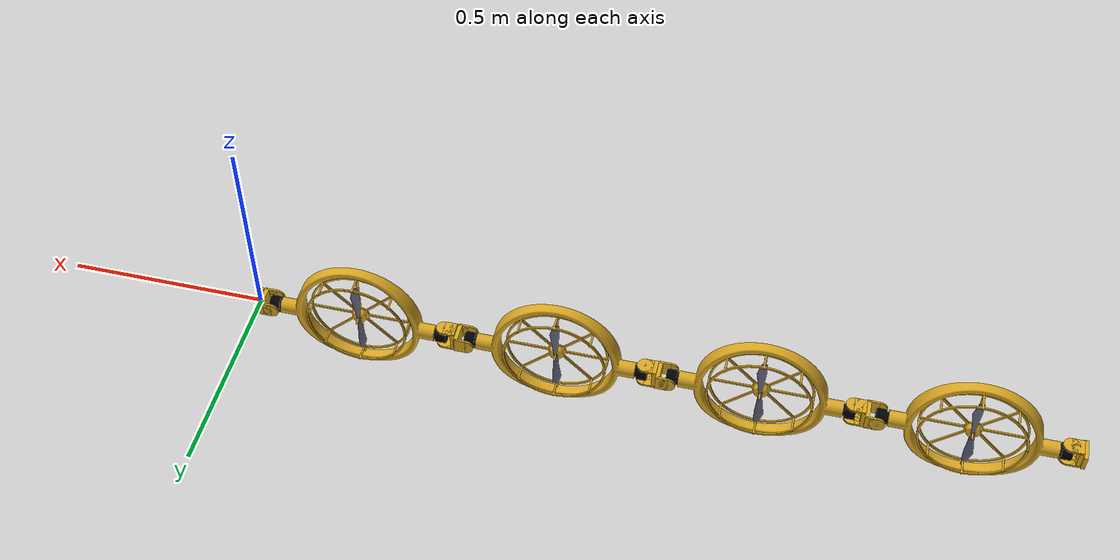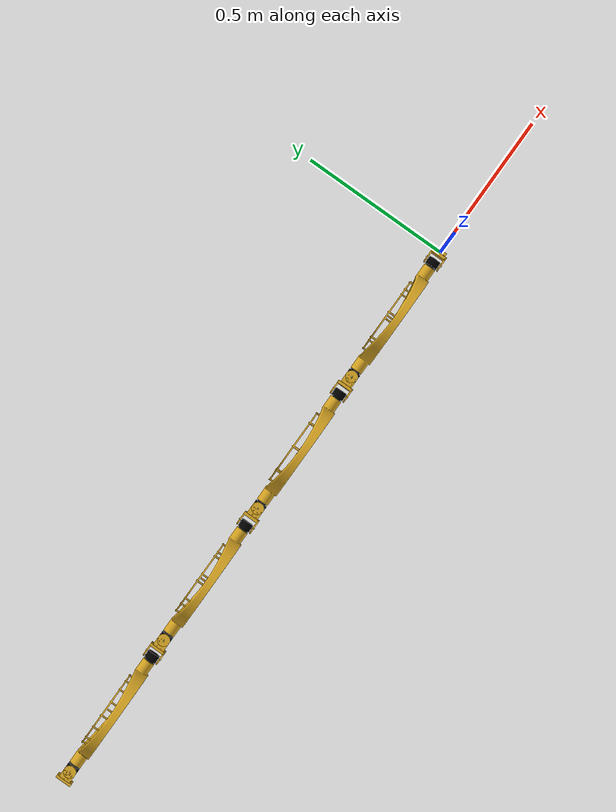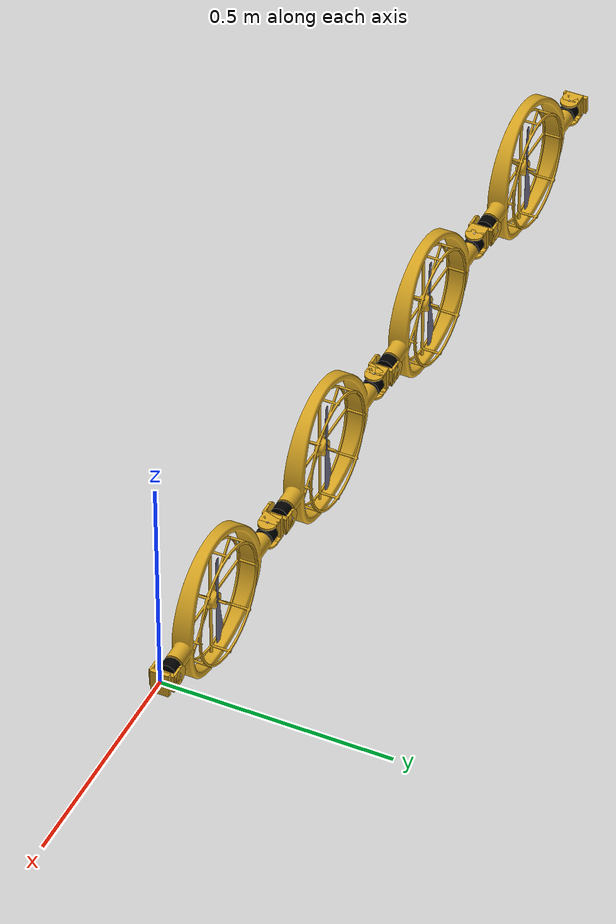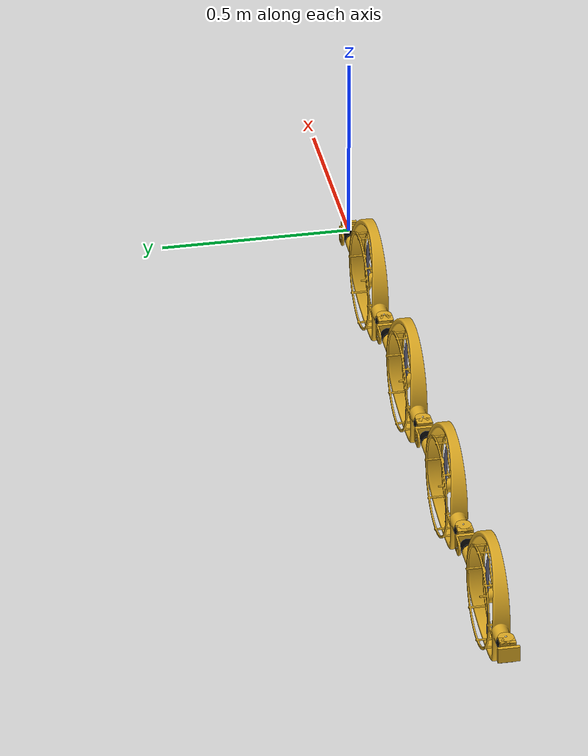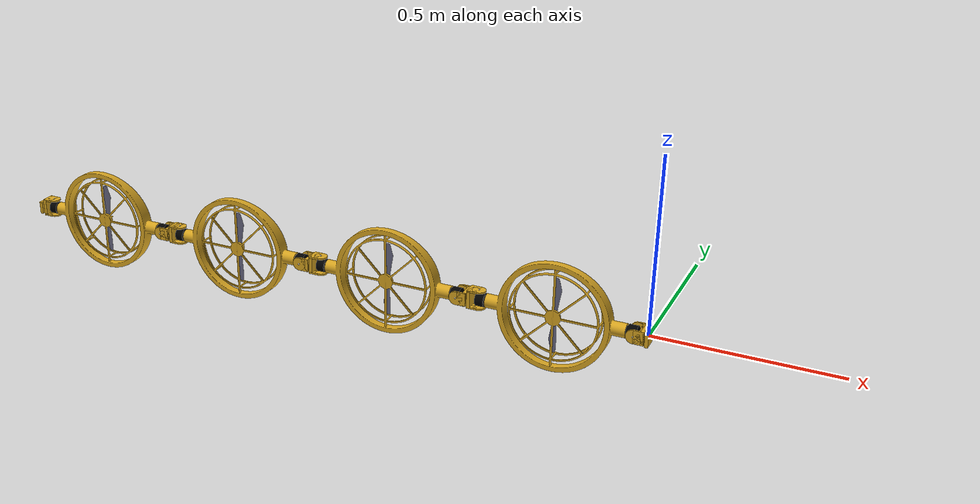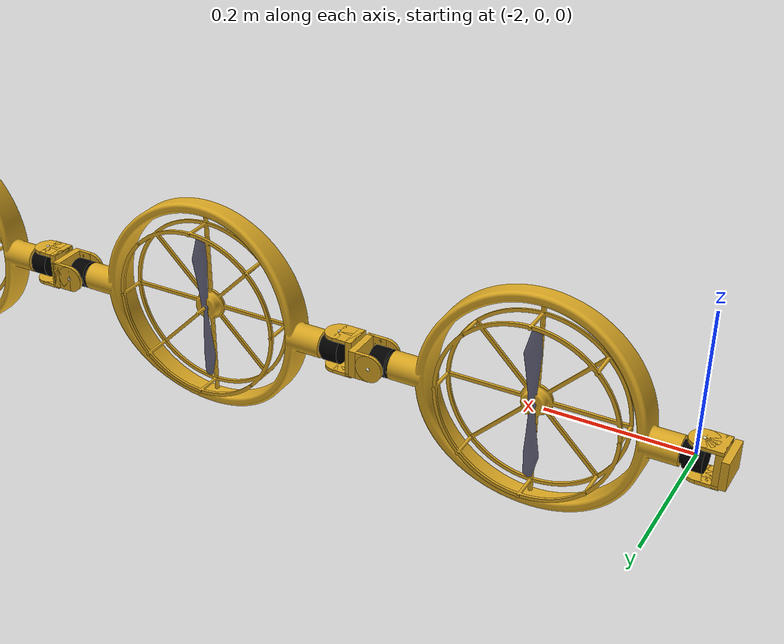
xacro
<?xml version="1.0"?>
<robot
    xmlns:xacro="http://www.ros.org/wiki/xacro" name="tiltrotor" >

  <xacro:include filename="$(find aerial_robot_model)/urdf/dragon2/dragon2_common.xacro" />
  <xacro:include filename="$(find aerial_robot_model)/urdf/dragon2/dragon2_link.urdf.xacro" />
  <xacro:include filename="$(find aerial_robot_model)/urdf/dragon2/dragon2_head.urdf.xacro" />

  <xacro:dragon_head self="link0"  gripper="0" />
  <xacro:dragon_link parent="link0" self="link1"/>
  <xacro:dragon_link parent="link1" self="link2"/>
  <xacro:dragon_link parent="link2" self="link3"/>
  <xacro:dragon_link parent="link3" self="link4"/>
  <xacro:dragon_head2 parent="link4" self="link5" gripper="0"/>

</robot>

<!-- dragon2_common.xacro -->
<robot
    xmlns:xacro="http://www.ros.org/wiki/xacro" name="test_common" >

  <xacro:property name="abdomen_radius" value=".23" />
  <xacro:property name="abdomen_height" value=".055" />
  <xacro:property name="abdomen_x_offset" value=".006" />
  <xacro:property name="abdomen_z_offset" value=".02" />
  <xacro:property name="tail_len" value=".1" />
  <xacro:property name="tail_width" value=".04" />
  <xacro:property name="tail_height" value=".005" />
  <xacro:property name="joint_rod_radius" value=".0012" />

  <xacro:macro name="link_color">
    <material name="gold">
      <color rgba="0.85 0.65 .13 1"/>
    </material>
  </xacro:macro>

  <xacro:macro name="servo_color">
    <material name="balck">
      <color rgba="0.0 .0 .0 1"/>
    </material>
  </xacro:macro>

  <xacro:macro name="propeller_color">
    <material name="gray">
      <color rgba="0.4 .4 .5 1"/>
    </material>
  </xacro:macro>

</robot>

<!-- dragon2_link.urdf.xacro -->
<robot
    xmlns:xacro="http://www.ros.org/wiki/xacro" name="dragon_link" >

  <xacro:macro name="dragon_link" params="parent self">

    <!-- the radius of abdomen is 230mm -->

    <joint name="${parent}_${self}_joint" type="fixed">
      <parent link="${parent}_rear_junction"/>
      <child link="${self}_front_junction"/>
      <origin rpy="-1.5708  0 0" xyz="-0.01 0 0"/>
    </joint>

    <link name="${self}_front_junction">
      <visual>
        <geometry>
          <box size="0.01 ${tail_width} ${abdomen_height}"/>
        </geometry>
        <xacro:link_color />
      </visual>
    </link>

    <joint name="${self}_front_junction_${self}_front_joint_rod_joint" type="fixed">
      <child link="${self}_front_joint_rod"/>
      <parent link="${self}_front_junction"/>
      <origin rpy="0 0 0" xyz="${-tail_len*.3+.005} 0 0"/>
    </joint>

    <link name="${self}_front_joint_rod_top">
      <visual>
        <geometry>
          <sphere radius="${joint_rod_radius*2}"/>
        </geometry>
        <material name="white">
          <color rgba="1 1 1 0.8"/>
        </material>
      </visual>
    </link>

    <joint name="${self}_front_joint_rod_top_${self}_front_joint_rod_joint" type="fixed">
      <parent link="${self}_front_joint_rod"/>
      <child link="${self}_front_joint_rod_top"/>
      <origin rpy="0 0 0" xyz="0 0 ${abdomen_height*.5}"/>
    </joint>

    <link name="${self}_front_joint_rod_bottom">
      <visual>
        <geometry>
          <sphere radius="${joint_rod_radius*2}"/>
        </geometry>
        <material name="white">
          <color rgba="1 1 1 0.8"/>
        </material>
      </visual>
    </link>

    <joint name="${self}_front_joint_rod_${self}_bottom_front_joint_rod_joint" type="fixed">
      <parent link="${self}_front_joint_rod"/>
      <child link="${self}_front_joint_rod_bottom"/>
      <origin rpy="0 0 0" xyz="0 0 -${abdomen_height*.5}"/>
    </joint>

    <link name="${self}_top_front_hinge_end">
      <visual>
        <geometry>
          <cylinder length="${tail_height}" radius="${tail_width*.5}"/>
        </geometry>
        <xacro:link_color />
      </visual>
    </link>

    <joint name="${self}_top_front_hinge_end_${self}_front_joint_rod_joint" type="fixed">
      <parent link="${self}_front_joint_rod"/>
      <child link="${self}_top_front_hinge_end"/>
      <origin rpy="0 0 0" xyz="0 0 ${abdomen_height*.5-tail_height*.5}"/>
    </joint>

    <link name="${self}_bottom_front_hinge_end">
      <visual>
        <geometry>
          <cylinder length="${tail_height}" radius="${tail_width*.5}"/>
        </geometry>
        <xacro:link_color />
      </visual>
    </link>

    <joint name="${self}_bottom_front_hinge_end_${self}_front_joint_rod_joint" type="fixed">
      <parent link="${self}_front_joint_rod"/>
      <child link="${self}_bottom_front_hinge_end"/>
      <origin rpy="0 0 0" xyz="0 0 ${-abdomen_height*.5+tail_height*.5}"/>
    </joint>

    <link name="${self}_top_front_hinge">
      <visual>
        <geometry>
          <box size="${tail_len*.3} ${tail_width} ${tail_height}"/>
        </geometry>
        <xacro:link_color />
      </visual>
    </link>

    <joint name="${self}_top_front_hinge_${self}_top_front_hinge_end_joint" type="fixed">
      <parent link="${self}_top_front_hinge_end"/>
      <child link="${self}_top_front_hinge"/>
      <origin rpy="0 0 0" xyz="${tail_len*.15} 0 0"/>
    </joint>

    <link name="${self}_bottom_front_hinge">
      <visual>
        <geometry>
          <box size="${tail_len*.3} ${tail_width} ${tail_height}"/>
        </geometry>
        <xacro:link_color />
      </visual>
    </link>

    <joint name="${self}_bottom_front_hinge_${self}_bottom_front_hinge_end_joint" type="fixed">
      <parent link="${self}_bottom_front_hinge_end"/>
      <child link="${self}_bottom_front_hinge"/>
      <origin rpy="0 0 0" xyz="${tail_len*.15} 0 0"/>
    </joint>

    <link name="${self}_front_joint_rod">
      <visual>
        <geometry>
          <cylinder length="${abdomen_height}" radius="${joint_rod_radius}"/>
        </geometry>
        <material name="white">
          <color rgba="1 1 1 0.8"/>
        </material>
      </visual>
    </link>

    <joint name="${self}_front_yaw_joint" type="continuous">
      <parent link="${self}_front_joint_rod"/>
      <child link="${self}_abdomen3"/>
      <origin rpy="0 0 0" xyz="0 0 0"/>
      <axis xyz="0 0 1"/>
    </joint>

    <link name="${self}_abdomen">
      <visual>
        <origin rpy="0 0 0" xyz="0 0 0"/>
        <geometry>
          <mesh filename="package://aerial_robot_model/urdf/mesh_model/propeller_link_new1.stl" scale=".001 .001 .001"/>
        </geometry>
        <xacro:link_color />
      </visual>
    </link>

    <link name="${self}_abdomen2">
      <visual>
        <origin rpy="0 0 0" xyz="0 -${abdomen_z_offset} 0"/>
        <geometry>
          <mesh filename="package://aerial_robot_model/urdf/mesh_model/propeller_link_new2.stl" scale=".001 .001 .001"/>
        </geometry>
        <xacro:link_color />
      </visual>
    </link>

    <joint name="${self}_tiltrotor_pitch_joint" type="continuous">
      <parent link="${self}_abdomen2"/>
      <child link="${self}_abdomen"/>
      <origin rpy="0 0 0" xyz="0 -${abdomen_z_offset} 0"/>
      <axis xyz="0 0 1"/>
    </joint>

    <link name="${self}_abdomen3">
      <visual>
        <origin rpy="1.5708 0  0"
                xyz="${-abdomen_radius + abdomen_x_offset} 0 ${-abdomen_z_offset}"/>
        <geometry>
          <mesh filename="package://aerial_robot_model/urdf/mesh_model/propeller_link_new3.stl" scale=".001 .001 .001"/>
        </geometry>
        <xacro:servo_color />
      </visual>
    </link>

    <joint name="${self}_tiltrotor_roll_joint" type="continuous">
      <child link="${self}_abdomen2"/>
      <parent link="${self}_abdomen3"/>
      <origin rpy="1.5708 0 0" xyz="${-abdomen_radius + abdomen_x_offset} 0 0"/>
      <axis xyz="1 0 0"/>
    </joint>

    <link name="${self}_propeller">
      <visual>
        <origin rpy="-1.5708 0 0" xyz="0 0.018 0"/>
        <geometry>
          <mesh filename="package://aerial_robot_model/urdf/mesh_model/propellers.stl" scale=".001 .001 .001"/>
        </geometry>
        <xacro:propeller_color />
      </visual>
    </link>

    <joint name="${self}_propeller_joint" type="continuous">
      <parent link="${self}_abdomen"/>
      <child link="${self}_propeller"/>
      <origin rpy="0 0 0" xyz="0 0 0"/>
      <axis xyz="0 1 0"/>
    </joint>

    <joint name="${self}_rear_pitch_joint" type="continuous">
      <parent link="${self}_abdomen3"/>
      <child link="${self}_rear_joint_rod"/>
      <origin rpy="1.5708 0 0"
              xyz="${-abdomen_radius * 2 + abdomen_x_offset*2} 0 0"/>
      <axis xyz="0 0 1"/>
    </joint>

    <link name="${self}_rear_joint_rod">
      <visual>
        <geometry>
          <cylinder length="${abdomen_height}" radius="${joint_rod_radius}"/>
        </geometry>
        <material name="white">
          <color rgba="1 1 1 0.8"/>
        </material>
      </visual>
    </link>

    <link name="${self}_rear_joint_rod_top">
      <visual>
        <geometry>
          <sphere radius="${joint_rod_radius*2}"/>
        </geometry>
        <material name="white">
          <color rgba="1 1 1 0.8"/>
        </material>
      </visual>
    </link>

    <joint name="${self}_rear_joint_rod_top_${self}_rear_joint_rod_joint" type="fixed">
      <parent link="${self}_rear_joint_rod"/>
      <child link="${self}_rear_joint_rod_top"/>
      <origin rpy="0 0 0" xyz="0 0 ${abdomen_height*.5}"/>
    </joint>

    <link name="${self}_rear_joint_rod_bottom">
      <visual>
        <geometry>
          <sphere radius="${joint_rod_radius*2}"/>
        </geometry>
        <material name="white">
          <color rgba="1 1 1 0.8"/>
        </material>
      </visual>
    </link>

    <joint name="${self}_rear_joint_rod_${self}_bottom_rear_joint_rod_joint" type="fixed">
      <parent link="${self}_rear_joint_rod"/>
      <child link="${self}_rear_joint_rod_bottom"/>
      <origin rpy="0 0 0" xyz="0 0 -${abdomen_height*.5}"/>
    </joint>

    <link name="${self}_top_rear_hinge_end">
      <visual>
        <geometry>
          <cylinder length="${tail_height}" radius="${tail_width*.5}"/>
        </geometry>
        <xacro:link_color />
      </visual>
    </link>

    <joint name="${self}_top_rear_hinge_end_${self}_rear_joint_rod_joint" type="fixed">
      <parent link="${self}_rear_joint_rod"/>
      <child link="${self}_top_rear_hinge_end"/>
      <origin rpy="0 0 0" xyz="0 0 ${abdomen_height*.5-tail_height*.5}"/>
    </joint>

    <link name="${self}_bottom_rear_hinge_end">
      <visual>
        <geometry>
          <cylinder length="${tail_height}" radius="${tail_width*.5}"/>
        </geometry>
        <xacro:link_color />
      </visual>
    </link>

    <joint name="${self}_bottom_rear_hinge_end_${self}_rear_joint_rod_joint" type="fixed">
      <parent link="${self}_rear_joint_rod"/>
      <child link="${self}_bottom_rear_hinge_end"/>
      <origin rpy="0 0 0" xyz="0 0 ${-abdomen_height*.5+tail_height*.5}"/>
    </joint>

    <link name="${self}_top_rear_hinge">
      <visual>
        <geometry>
          <box size="${tail_len*.3} ${tail_width} ${tail_height}"/>
        </geometry>
        <xacro:link_color />
      </visual>
    </link>

    <joint name="${self}_top_rear_hinge_${self}_top_rear_hinge_end_joint" type="fixed">
      <parent link="${self}_top_rear_hinge_end"/>
      <child link="${self}_top_rear_hinge"/>
      <origin rpy="0 0 0" xyz="${-tail_len*.15} 0 0"/>
    </joint>

    <link name="${self}_bottom_rear_hinge">
      <visual>
        <geometry>
          <box size="${tail_len*.3} ${tail_width} ${tail_height}"/>
        </geometry>
        <xacro:link_color />
      </visual>
    </link>

    <joint name="${self}_bottom_rear_hinge_${self}_bottom_rear_hinge_end_joint" type="fixed">
      <parent link="${self}_bottom_rear_hinge_end"/>
      <child link="${self}_bottom_rear_hinge"/>
      <origin rpy="0 0 0" xyz="${-tail_len*.15} 0 0"/>
    </joint>

    <link name="${self}_rear_junction">
      <visual>
        <geometry>
          <box size="0.01 ${tail_width } ${abdomen_height}"/>
        </geometry>
        <xacro:link_color />
      </visual>
    </link>

    <joint name="${self}_rear_junction_${self}_rear_joint_rod_joint" type="fixed">
      <parent link="${self}_rear_joint_rod"/>
      <child link="${self}_rear_junction"/>
      <origin rpy="0 0 0" xyz="${-tail_len*.3+.005} 0 0"/>
    </joint>

  </xacro:macro>

</robot>

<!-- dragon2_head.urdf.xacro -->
<robot
    xmlns:xacro="http://www.ros.org/wiki/xacro" name="dragon_head" >

  <xacro:macro name="pr2_gripper" params="self">
    <joint name="${self}_left_gripper_joint" type="revolute">
      <axis xyz="0 0 1"/>
      <limit effort="1000.0" lower="0.0" upper="0.548" velocity="0.5"/>
      <origin rpy="0 0 0" xyz="0.015 0.01 0"/>
      <parent link="${self}_head_base"/>
      <child link="${self}_left_gripper"/>
    </joint>

    <link name="${self}_left_gripper">
      <visual>
        <origin rpy="0.0 0 0" xyz="0 0 0"/>
        <geometry>
          <mesh filename="package://aerial_robot_model/urdf/mesh_model/l_finger.dae"/>
        </geometry>
        <xacro:link_color />
      </visual>
    </link>

    <joint name="${self}_left_tip_joint" type="fixed">
      <parent link="${self}_left_gripper"/>
      <child link="${self}_left_tip"/>
    </joint>

    <link name="${self}_left_tip">
      <visual>
        <origin rpy="0.0 0 0" xyz="0.09137 0.00495 0"/>
        <geometry>
          <mesh filename="package://pr2_description/meshes/gripper_v0/l_finger_tip.dae"/>
        </geometry>
        <xacro:link_color />
      </visual>
    </link>

    <joint name="${self}_right_gripper_joint" type="revolute">
      <axis xyz="0 0 -1"/>
      <limit effort="1000.0" lower="0.0" upper="0.548" velocity="0.5"/>
      <origin rpy="0 0 0" xyz="0.015 -0.01 0"/>
      <parent link="${self}_head_base"/>
      <child link="${self}_right_gripper"/>
    </joint>

    <link name="${self}_right_gripper">
      <visual>
        <origin rpy="-3.1415 0 0" xyz="0 0 0"/>
        <geometry>
          <mesh filename="package://aerial_robot_model/urdf/mesh_model/l_finger.dae"/>
        </geometry>
        <xacro:link_color />
      </visual>
    </link>

    <joint name="${self}_right_tip_joint" type="fixed">
      <parent link="${self}_right_gripper"/>
      <child link="${self}_right_tip"/>
    </joint>

    <link name="${self}_right_tip">
      <visual>
        <origin rpy="-3.1415 0 0" xyz="0.09137 0.00495 0"/>
        <geometry>
          <mesh filename="package://pr2_description/meshes/gripper_v0/l_finger_tip.dae"/>
        </geometry>
        <xacro:link_color />
      </visual>
    </link>

    <link name="${self}_head_base">
      <visual>
        <geometry>
          <box size="0.01 ${tail_width*.5} ${abdomen_height*.5}"/>
        </geometry>
        <xacro:link_color />
      </visual>
    </link>

    <joint name="${self}_roll_joint" type="continuous">
      <parent link="${self}_rear_junction"/>
      <child link="${self}_head_base"/>
      <origin rpy="0 0 0" xyz="0 0 0"/>
      <axis xyz="1 0 0"/>
    </joint>

  </xacro:macro>

  <xacro:macro name="dragon_head" params="self gripper">
    <xacro:if value="${gripper}">
      <xacro:pr2_gripper self="${self}"/>
    </xacro:if>
    <link name="${self}_rear_junction">
      <visual>
        <geometry>
          <box size="0.01 ${tail_width} ${abdomen_height}"/>
        </geometry>
        <xacro:link_color />
      </visual>
    </link>

  </xacro:macro>

  <xacro:macro name="dragon_head2" params="parent self gripper">
    <xacro:if value="${gripper}">
      <xacro:pr2_gripper self="${self}"/>
    </xacro:if>
    <link name="${self}_rear_junction">
      <visual>
        <geometry>
          <box size="0.01 ${tail_width} ${abdomen_height}"/>
        </geometry>
        <xacro:link_color />
      </visual>
    </link>

    <joint name="${parent}_${self}_joint" type="fixed">
      <parent link="${parent}_rear_junction"/>
      <child link="${self}_rear_junction"/>
      <origin rpy="-1.5708  3.1415 0" xyz="-0.01 0 0"/>
    </joint>
  </xacro:macro>

</robot>
